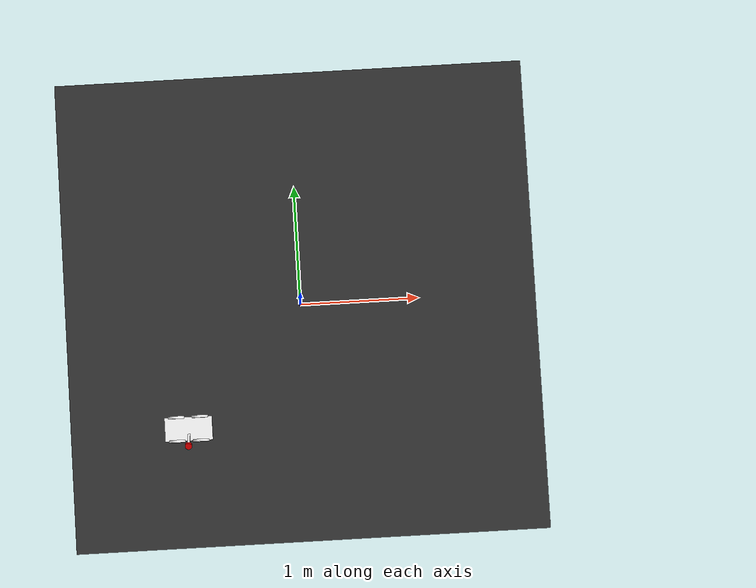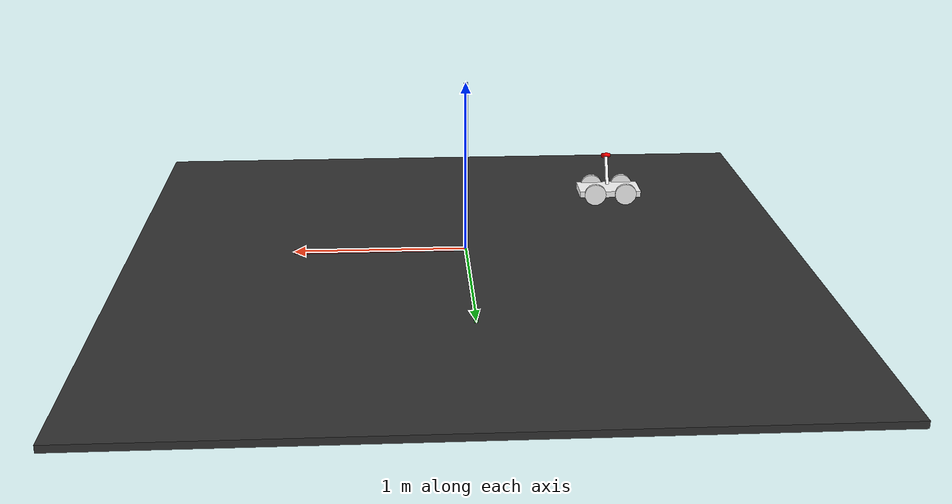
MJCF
<?xml version="1.0" ?>
<mujoco>
    <worldbody>

        <body name="floor" pos="0 0 -0.1">
            <geom size="2.0 2.0 0.02" rgba="0.2 0.2 0.2 1" type="box"/>
        </body>
        <body name="x_arrow" pos="0.5 0 0">
            <geom size="0.5 0.01 0.01" rgba="1 0 0 0.5" type="box"/>
        </body>
        <body name="y_arrow" pos="0 0.5 0">
            <geom size="0.01 0.5 0.01" rgba="0 1 0 0.5" type="box"/>
        </body>
        <body name="z_arrow" pos="0 0 0.5">
            <geom size="0.01 0.01 0.5" rgba="0 0 1 0.5" type="box"/>
        </body>

        <body name="car" pos="-1.000 -1.000 0.0" axisangle="0 0 1 0.000">
            <geom size="0.2 0.1 0.02" rgba="1 1 1 0.9" type="box"/>
        </body>
        <body name="wheel_1" pos="-0.900 -0.900 0.0" axisangle="1.000 0.000 0.000 90.000">
            <geom size="0.07 0.01" rgba="1 1 1 0.9" type="cylinder"/>
        </body>
        <body name="wheel_2" pos="-1.100 -0.900 0.0" axisangle="1.000 0.000 0.000 90.000">
            <geom size="0.07 0.01" rgba="1 1 1 0.9" type="cylinder"/>
        </body>
        <body name="wheel_3" pos="-1.100 -1.100 0.0" axisangle="1.000 0.000 0.000 90.000">
            <geom size="0.07 0.01" rgba="1 1 1 0.9" type="cylinder"/>
        </body>
        <body name="wheel_4" pos="-0.900 -1.100 0.0" axisangle="1.000 0.000 0.000 90.000">
            <geom size="0.07 0.01" rgba="1 1 1 0.9" type="cylinder"/>
        </body>
        <body name="radar_1" pos="-1.000 -1.100 0.100" axisangle="1.000 0.000 0.000 30.000">
        <geom size="0.01 0.01 0.1" rgba="1 1 1 1" type="box"/>
        </body>
        <body name="radar_2" pos="-1.000 -1.150 0.190" axisangle="1.000 0.000 0.000 30.000">
            <geom size="0.03 0.01" rgba="1 0 0 1" type="cylinder"/>
        </body>

    </worldbody>

    <visual>
        <global offwidth="1280" offheight="1280"/>
    </visual>
</mujoco>
